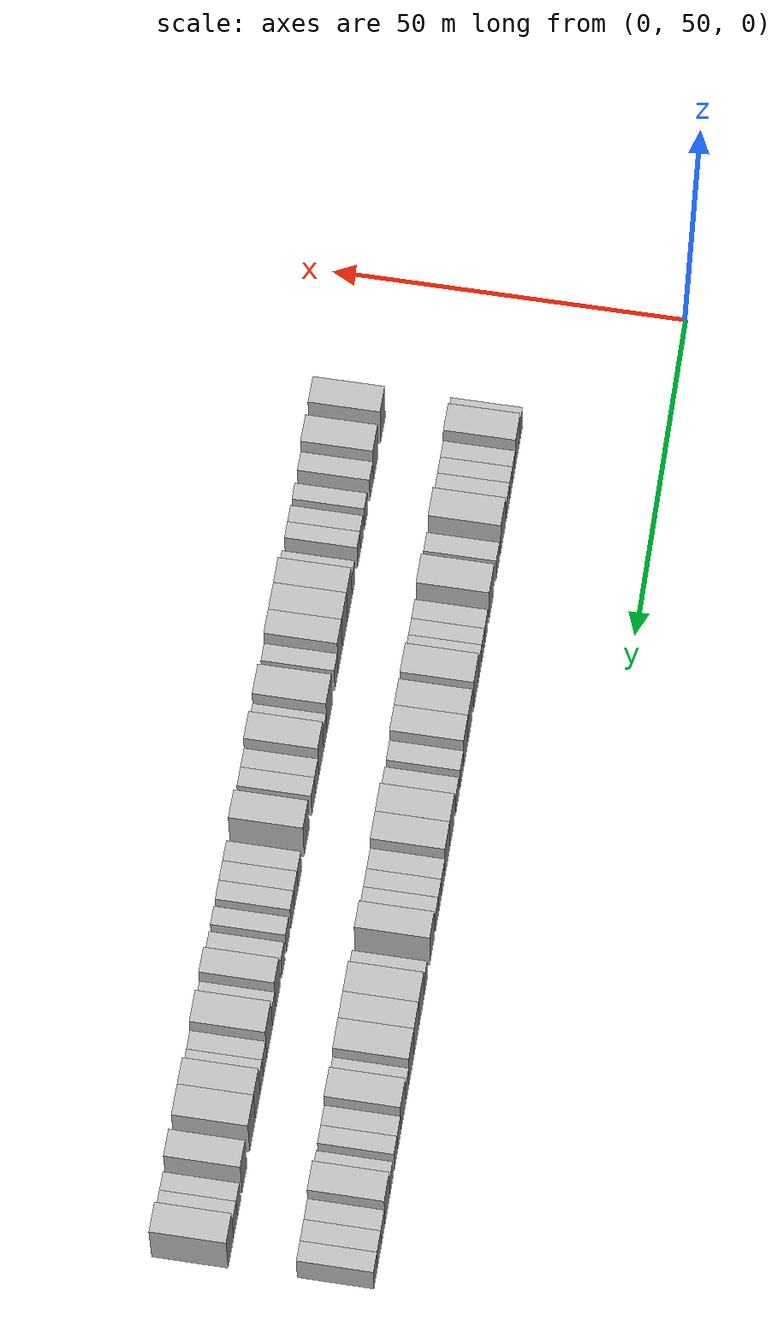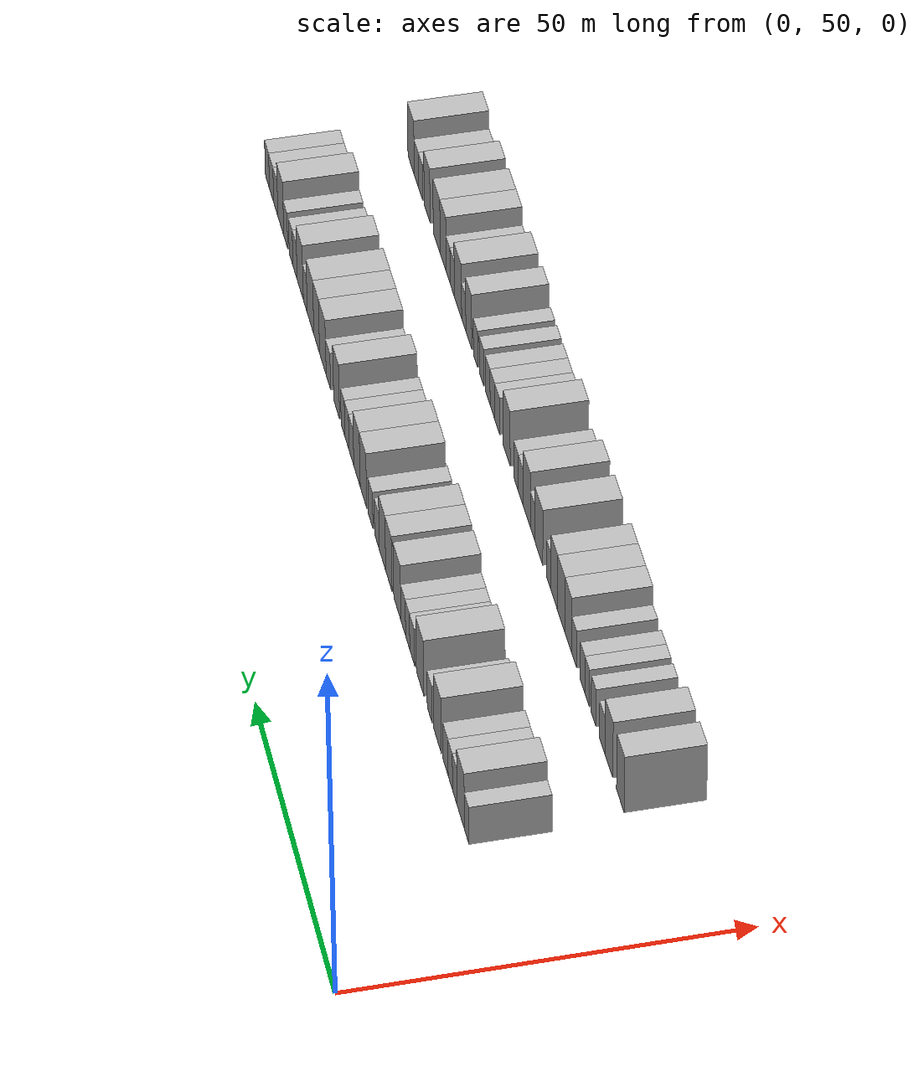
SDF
<sdf version="1.6">
 <world name="default">
  <model name="building_70">
   <static>1</static>
   <pose>25.0000 71.9206 0 0.000000 0.000000 0.000000</pose>
   <link name="link">
    <pose>0 0 3.00 0 0 0</pose>
    <collision name="collision"><geometry><box><size>10.0000 2.6103 6.0000</size></box></geometry></collision>
    <visual name="visual">
     <cast_shadows>0</cast_shadows>
     <geometry><box><size>10.0000 2.6103 6.0000</size></box></geometry>
     <material>
      <script>
       <uri>model://HANNAS_wall/materials/scripts</uri>
       <uri>model://HANNAS_wall/materials/textures</uri>
       <name>vrc/HANNAS_wall</name>
      </script>
     </material>
    </visual>
   </link>
  </model>
  <model name="building_71">
   <static>1</static>
   <pose>25.0000 75.3492 0 0.000000 0.000000 0.000000</pose>
   <link name="link">
    <pose>0 0 4.50 0 0 0</pose>
    <collision name="collision"><geometry><box><size>10.0000 4.2471 9.0000</size></box></geometry></collision>
    <visual name="visual">
     <cast_shadows>0</cast_shadows>
     <geometry><box><size>10.0000 4.2471 9.0000</size></box></geometry>
     <material>
      <script>
       <uri>model://HANNAS_wall/materials/scripts</uri>
       <uri>model://HANNAS_wall/materials/textures</uri>
       <name>vrc/HANNAS_wall</name>
      </script>
     </material>
    </visual>
   </link>
  </model>
  <model name="building_72">
   <static>1</static>
   <pose>25.0000 78.7423 0 0.000000 0.000000 0.000000</pose>
   <link name="link">
    <pose>0 0 3.00 0 0 0</pose>
    <collision name="collision"><geometry><box><size>10.0000 2.5389 6.0000</size></box></geometry></collision>
    <visual name="visual">
     <cast_shadows>0</cast_shadows>
     <geometry><box><size>10.0000 2.5389 6.0000</size></box></geometry>
     <material>
      <script>
       <uri>model://HANNAS_wall/materials/scripts</uri>
       <uri>model://HANNAS_wall/materials/textures</uri>
       <name>vrc/HANNAS_wall</name>
      </script>
     </material>
    </visual>
   </link>
  </model>
  <model name="building_73">
   <static>1</static>
   <pose>25.0000 81.2776 0 0.000000 0.000000 0.000000</pose>
   <link name="link">
    <pose>0 0 3.00 0 0 0</pose>
    <collision name="collision"><geometry><box><size>10.0000 2.5317 6.0000</size></box></geometry></collision>
    <visual name="visual">
     <cast_shadows>0</cast_shadows>
     <geometry><box><size>10.0000 2.5317 6.0000</size></box></geometry>
     <material>
      <script>
       <uri>model://HANNAS_wall/materials/scripts</uri>
       <uri>model://HANNAS_wall/materials/textures</uri>
       <name>vrc/HANNAS_wall</name>
      </script>
     </material>
    </visual>
   </link>
  </model>
  <model name="building_74">
   <static>1</static>
   <pose>25.0000 84.0116 0 0.000000 0.000000 0.000000</pose>
   <link name="link">
    <pose>0 0 3.00 0 0 0</pose>
    <collision name="collision"><geometry><box><size>10.0000 2.9365 6.0000</size></box></geometry></collision>
    <visual name="visual">
     <cast_shadows>0</cast_shadows>
     <geometry><box><size>10.0000 2.9365 6.0000</size></box></geometry>
     <material>
      <script>
       <uri>model://HANNAS_wall/materials/scripts</uri>
       <uri>model://HANNAS_wall/materials/textures</uri>
       <name>vrc/HANNAS_wall</name>
      </script>
     </material>
    </visual>
   </link>
  </model>
  <model name="building_75">
   <static>1</static>
   <pose>25.0000 88.6656 0 0.000000 0.000000 0.000000</pose>
   <link name="link">
    <pose>0 0 4.50 0 0 0</pose>
    <collision name="collision"><geometry><box><size>10.0000 4.3715 9.0000</size></box></geometry></collision>
    <visual name="visual">
     <cast_shadows>0</cast_shadows>
     <geometry><box><size>10.0000 4.3715 9.0000</size></box></geometry>
     <material>
      <script>
       <uri>model://HANNAS_wall/materials/scripts</uri>
       <uri>model://HANNAS_wall/materials/textures</uri>
       <name>vrc/HANNAS_wall</name>
      </script>
     </material>
    </visual>
   </link>
  </model>
  <model name="building_76">
   <static>1</static>
   <pose>25.0000 93.3038 0 0.000000 0.000000 0.000000</pose>
   <link name="link">
    <pose>0 0 3.00 0 0 0</pose>
    <collision name="collision"><geometry><box><size>10.0000 2.9049 6.0000</size></box></geometry></collision>
    <visual name="visual">
     <cast_shadows>0</cast_shadows>
     <geometry><box><size>10.0000 2.9049 6.0000</size></box></geometry>
     <material>
      <script>
       <uri>model://HANNAS_wall/materials/scripts</uri>
       <uri>model://HANNAS_wall/materials/textures</uri>
       <name>vrc/HANNAS_wall</name>
      </script>
     </material>
    </visual>
   </link>
  </model>
  <model name="building_77">
   <static>1</static>
   <pose>25.0000 98.9863 0 0.000000 0.000000 0.000000</pose>
   <link name="link">
    <pose>0 0 4.50 0 0 0</pose>
    <collision name="collision"><geometry><box><size>10.0000 4.4600 9.0000</size></box></geometry></collision>
    <visual name="visual">
     <cast_shadows>0</cast_shadows>
     <geometry><box><size>10.0000 4.4600 9.0000</size></box></geometry>
     <material>
      <script>
       <uri>model://HANNAS_wall/materials/scripts</uri>
       <uri>model://HANNAS_wall/materials/textures</uri>
       <name>vrc/HANNAS_wall</name>
      </script>
     </material>
    </visual>
   </link>
  </model>
  <model name="building_78">
   <static>1</static>
   <pose>25.0000 103.6691 0 0.000000 0.000000 0.000000</pose>
   <link name="link">
    <pose>0 0 3.00 0 0 0</pose>
    <collision name="collision"><geometry><box><size>10.0000 2.9058 6.0000</size></box></geometry></collision>
    <visual name="visual">
     <cast_shadows>0</cast_shadows>
     <geometry><box><size>10.0000 2.9058 6.0000</size></box></geometry>
     <material>
      <script>
       <uri>model://HANNAS_wall/materials/scripts</uri>
       <uri>model://HANNAS_wall/materials/textures</uri>
       <name>vrc/HANNAS_wall</name>
      </script>
     </material>
    </visual>
   </link>
  </model>
  <model name="building_79">
   <static>1</static>
   <pose>25.0000 106.3759 0 0.000000 0.000000 0.000000</pose>
   <link name="link">
    <pose>0 0 3.00 0 0 0</pose>
    <collision name="collision"><geometry><box><size>10.0000 2.5078 6.0000</size></box></geometry></collision>
    <visual name="visual">
     <cast_shadows>0</cast_shadows>
     <geometry><box><size>10.0000 2.5078 6.0000</size></box></geometry>
     <material>
      <script>
       <uri>model://HANNAS_wall/materials/scripts</uri>
       <uri>model://HANNAS_wall/materials/textures</uri>
       <name>vrc/HANNAS_wall</name>
      </script>
     </material>
    </visual>
   </link>
  </model>
  <model name="building_80">
   <static>1</static>
   <pose>25.0000 109.0364 0 0.000000 0.000000 0.000000</pose>
   <link name="link">
    <pose>0 0 3.00 0 0 0</pose>
    <collision name="collision"><geometry><box><size>10.0000 2.8132 6.0000</size></box></geometry></collision>
    <visual name="visual">
     <cast_shadows>0</cast_shadows>
     <geometry><box><size>10.0000 2.8132 6.0000</size></box></geometry>
     <material>
      <script>
       <uri>model://HANNAS_wall/materials/scripts</uri>
       <uri>model://HANNAS_wall/materials/textures</uri>
       <name>vrc/HANNAS_wall</name>
      </script>
     </material>
    </visual>
   </link>
  </model>
  <model name="building_81">
   <static>1</static>
   <pose>25.0000 112.6506 0 0.000000 0.000000 0.000000</pose>
   <link name="link">
    <pose>0 0 4.50 0 0 0</pose>
    <collision name="collision"><geometry><box><size>10.0000 4.4153 9.0000</size></box></geometry></collision>
    <visual name="visual">
     <cast_shadows>0</cast_shadows>
     <geometry><box><size>10.0000 4.4153 9.0000</size></box></geometry>
     <material>
      <script>
       <uri>model://HANNAS_wall/materials/scripts</uri>
       <uri>model://HANNAS_wall/materials/textures</uri>
       <name>vrc/HANNAS_wall</name>
      </script>
     </material>
    </visual>
   </link>
  </model>
  <model name="building_82">
   <static>1</static>
   <pose>25.0000 117.8147 0 0.000000 0.000000 0.000000</pose>
   <link name="link">
    <pose>0 0 4.50 0 0 0</pose>
    <collision name="collision"><geometry><box><size>10.0000 3.9129 9.0000</size></box></geometry></collision>
    <visual name="visual">
     <cast_shadows>0</cast_shadows>
     <geometry><box><size>10.0000 3.9129 9.0000</size></box></geometry>
     <material>
      <script>
       <uri>model://HANNAS_wall/materials/scripts</uri>
       <uri>model://HANNAS_wall/materials/textures</uri>
       <name>vrc/HANNAS_wall</name>
      </script>
     </material>
    </visual>
   </link>
  </model>
  <model name="building_83">
   <static>1</static>
   <pose>25.0000 121.7105 0 0.000000 0.000000 0.000000</pose>
   <link name="link">
    <pose>0 0 4.50 0 0 0</pose>
    <collision name="collision"><geometry><box><size>10.0000 3.8787 9.0000</size></box></geometry></collision>
    <visual name="visual">
     <cast_shadows>0</cast_shadows>
     <geometry><box><size>10.0000 3.8787 9.0000</size></box></geometry>
     <material>
      <script>
       <uri>model://HANNAS_wall/materials/scripts</uri>
       <uri>model://HANNAS_wall/materials/textures</uri>
       <name>vrc/HANNAS_wall</name>
      </script>
     </material>
    </visual>
   </link>
  </model>
  <model name="building_84">
   <static>1</static>
   <pose>25.0000 125.1361 0 0.000000 0.000000 0.000000</pose>
   <link name="link">
    <pose>0 0 3.00 0 0 0</pose>
    <collision name="collision"><geometry><box><size>10.0000 2.9725 6.0000</size></box></geometry></collision>
    <visual name="visual">
     <cast_shadows>0</cast_shadows>
     <geometry><box><size>10.0000 2.9725 6.0000</size></box></geometry>
     <material>
      <script>
       <uri>model://HANNAS_wall/materials/scripts</uri>
       <uri>model://HANNAS_wall/materials/textures</uri>
       <name>vrc/HANNAS_wall</name>
      </script>
     </material>
    </visual>
   </link>
  </model>
  <model name="building_85">
   <static>1</static>
   <pose>25.0000 129.0584 0 0.000000 0.000000 0.000000</pose>
   <link name="link">
    <pose>0 0 3.00 0 0 0</pose>
    <collision name="collision"><geometry><box><size>10.0000 2.8722 6.0000</size></box></geometry></collision>
    <visual name="visual">
     <cast_shadows>0</cast_shadows>
     <geometry><box><size>10.0000 2.8722 6.0000</size></box></geometry>
     <material>
      <script>
       <uri>model://HANNAS_wall/materials/scripts</uri>
       <uri>model://HANNAS_wall/materials/textures</uri>
       <name>vrc/HANNAS_wall</name>
      </script>
     </material>
    </visual>
   </link>
  </model>
  <model name="building_86">
   <static>1</static>
   <pose>25.0000 133.5608 0 0.000000 0.000000 0.000000</pose>
   <link name="link">
    <pose>0 0 4.50 0 0 0</pose>
    <collision name="collision"><geometry><box><size>10.0000 4.1327 9.0000</size></box></geometry></collision>
    <visual name="visual">
     <cast_shadows>0</cast_shadows>
     <geometry><box><size>10.0000 4.1327 9.0000</size></box></geometry>
     <material>
      <script>
       <uri>model://HANNAS_wall/materials/scripts</uri>
       <uri>model://HANNAS_wall/materials/textures</uri>
       <name>vrc/HANNAS_wall</name>
      </script>
     </material>
    </visual>
   </link>
  </model>
  <model name="building_87">
   <static>1</static>
   <pose>25.0000 137.6667 0 0.000000 0.000000 0.000000</pose>
   <link name="link">
    <pose>0 0 4.50 0 0 0</pose>
    <collision name="collision"><geometry><box><size>10.0000 4.0789 9.0000</size></box></geometry></collision>
    <visual name="visual">
     <cast_shadows>0</cast_shadows>
     <geometry><box><size>10.0000 4.0789 9.0000</size></box></geometry>
     <material>
      <script>
       <uri>model://HANNAS_wall/materials/scripts</uri>
       <uri>model://HANNAS_wall/materials/textures</uri>
       <name>vrc/HANNAS_wall</name>
      </script>
     </material>
    </visual>
   </link>
  </model>
  <model name="building_88">
   <static>1</static>
   <pose>25.0000 141.2052 0 0.000000 0.000000 0.000000</pose>
   <link name="link">
    <pose>0 0 3.00 0 0 0</pose>
    <collision name="collision"><geometry><box><size>10.0000 2.9981 6.0000</size></box></geometry></collision>
    <visual name="visual">
     <cast_shadows>0</cast_shadows>
     <geometry><box><size>10.0000 2.9981 6.0000</size></box></geometry>
     <material>
      <script>
       <uri>model://HANNAS_wall/materials/scripts</uri>
       <uri>model://HANNAS_wall/materials/textures</uri>
       <name>vrc/HANNAS_wall</name>
      </script>
     </material>
    </visual>
   </link>
  </model>
  <model name="building_89">
   <static>1</static>
   <pose>25.0000 144.0304 0 0.000000 0.000000 0.000000</pose>
   <link name="link">
    <pose>0 0 3.00 0 0 0</pose>
    <collision name="collision"><geometry><box><size>10.0000 2.6524 6.0000</size></box></geometry></collision>
    <visual name="visual">
     <cast_shadows>0</cast_shadows>
     <geometry><box><size>10.0000 2.6524 6.0000</size></box></geometry>
     <material>
      <script>
       <uri>model://HANNAS_wall/materials/scripts</uri>
       <uri>model://HANNAS_wall/materials/textures</uri>
       <name>vrc/HANNAS_wall</name>
      </script>
     </material>
    </visual>
   </link>
  </model>
  <model name="building_90">
   <static>1</static>
   <pose>25.0000 146.5695 0 0.000000 0.000000 0.000000</pose>
   <link name="link">
    <pose>0 0 3.00 0 0 0</pose>
    <collision name="collision"><geometry><box><size>10.0000 2.4257 6.0000</size></box></geometry></collision>
    <visual name="visual">
     <cast_shadows>0</cast_shadows>
     <geometry><box><size>10.0000 2.4257 6.0000</size></box></geometry>
     <material>
      <script>
       <uri>model://HANNAS_wall/materials/scripts</uri>
       <uri>model://HANNAS_wall/materials/textures</uri>
       <name>vrc/HANNAS_wall</name>
      </script>
     </material>
    </visual>
   </link>
  </model>
  <model name="building_91">
   <static>1</static>
   <pose>25.0000 150.7055 0 0.000000 0.000000 0.000000</pose>
   <link name="link">
    <pose>0 0 4.50 0 0 0</pose>
    <collision name="collision"><geometry><box><size>10.0000 3.8464 9.0000</size></box></geometry></collision>
    <visual name="visual">
     <cast_shadows>0</cast_shadows>
     <geometry><box><size>10.0000 3.8464 9.0000</size></box></geometry>
     <material>
      <script>
       <uri>model://HANNAS_wall/materials/scripts</uri>
       <uri>model://HANNAS_wall/materials/textures</uri>
       <name>vrc/HANNAS_wall</name>
      </script>
     </material>
    </visual>
   </link>
  </model>
  <model name="building_92">
   <static>1</static>
   <pose>25.0000 156.0804 0 0.000000 0.000000 0.000000</pose>
   <link name="link">
    <pose>0 0 3.00 0 0 0</pose>
    <collision name="collision"><geometry><box><size>10.0000 2.9036 6.0000</size></box></geometry></collision>
    <visual name="visual">
     <cast_shadows>0</cast_shadows>
     <geometry><box><size>10.0000 2.9036 6.0000</size></box></geometry>
     <material>
      <script>
       <uri>model://HANNAS_wall/materials/scripts</uri>
       <uri>model://HANNAS_wall/materials/textures</uri>
       <name>vrc/HANNAS_wall</name>
      </script>
     </material>
    </visual>
   </link>
  </model>
  <model name="building_93">
   <static>1</static>
   <pose>25.0000 159.6761 0 0.000000 0.000000 0.000000</pose>
   <link name="link">
    <pose>0 0 4.50 0 0 0</pose>
    <collision name="collision"><geometry><box><size>10.0000 4.2876 9.0000</size></box></geometry></collision>
    <visual name="visual">
     <cast_shadows>0</cast_shadows>
     <geometry><box><size>10.0000 4.2876 9.0000</size></box></geometry>
     <material>
      <script>
       <uri>model://HANNAS_wall/materials/scripts</uri>
       <uri>model://HANNAS_wall/materials/textures</uri>
       <name>vrc/HANNAS_wall</name>
      </script>
     </material>
    </visual>
   </link>
  </model>
  <model name="building_94">
   <static>1</static>
   <pose>25.0000 163.7129 0 0.000000 0.000000 0.000000</pose>
   <link name="link">
    <pose>0 0 4.50 0 0 0</pose>
    <collision name="collision"><geometry><box><size>10.0000 3.7861 9.0000</size></box></geometry></collision>
    <visual name="visual">
     <cast_shadows>0</cast_shadows>
     <geometry><box><size>10.0000 3.7861 9.0000</size></box></geometry>
     <material>
      <script>
       <uri>model://HANNAS_wall/materials/scripts</uri>
       <uri>model://HANNAS_wall/materials/textures</uri>
       <name>vrc/HANNAS_wall</name>
      </script>
     </material>
    </visual>
   </link>
  </model>
  <model name="building_95">
   <static>1</static>
   <pose>25.0000 167.7849 0 0.000000 0.000000 0.000000</pose>
   <link name="link">
    <pose>0 0 4.50 0 0 0</pose>
    <collision name="collision"><geometry><box><size>10.0000 4.3579 9.0000</size></box></geometry></collision>
    <visual name="visual">
     <cast_shadows>0</cast_shadows>
     <geometry><box><size>10.0000 4.3579 9.0000</size></box></geometry>
     <material>
      <script>
       <uri>model://HANNAS_wall/materials/scripts</uri>
       <uri>model://HANNAS_wall/materials/textures</uri>
       <name>vrc/HANNAS_wall</name>
      </script>
     </material>
    </visual>
   </link>
  </model>
  <model name="building_96">
   <static>1</static>
   <pose>25.0000 171.3018 0 0.000000 0.000000 0.000000</pose>
   <link name="link">
    <pose>0 0 3.00 0 0 0</pose>
    <collision name="collision"><geometry><box><size>10.0000 2.6759 6.0000</size></box></geometry></collision>
    <visual name="visual">
     <cast_shadows>0</cast_shadows>
     <geometry><box><size>10.0000 2.6759 6.0000</size></box></geometry>
     <material>
      <script>
       <uri>model://HANNAS_wall/materials/scripts</uri>
       <uri>model://HANNAS_wall/materials/textures</uri>
       <name>vrc/HANNAS_wall</name>
      </script>
     </material>
    </visual>
   </link>
  </model>
  <model name="building_97">
   <static>1</static>
   <pose>25.0000 174.7092 0 0.000000 0.000000 0.000000</pose>
   <link name="link">
    <pose>0 0 4.50 0 0 0</pose>
    <collision name="collision"><geometry><box><size>10.0000 4.1390 9.0000</size></box></geometry></collision>
    <visual name="visual">
     <cast_shadows>0</cast_shadows>
     <geometry><box><size>10.0000 4.1390 9.0000</size></box></geometry>
     <material>
      <script>
       <uri>model://HANNAS_wall/materials/scripts</uri>
       <uri>model://HANNAS_wall/materials/textures</uri>
       <name>vrc/HANNAS_wall</name>
      </script>
     </material>
    </visual>
   </link>
  </model>
  <model name="building_98">
   <static>1</static>
   <pose>25.0000 178.1788 0 0.000000 0.000000 0.000000</pose>
   <link name="link">
    <pose>0 0 3.00 0 0 0</pose>
    <collision name="collision"><geometry><box><size>10.0000 2.8002 6.0000</size></box></geometry></collision>
    <visual name="visual">
     <cast_shadows>0</cast_shadows>
     <geometry><box><size>10.0000 2.8002 6.0000</size></box></geometry>
     <material>
      <script>
       <uri>model://HANNAS_wall/materials/scripts</uri>
       <uri>model://HANNAS_wall/materials/textures</uri>
       <name>vrc/HANNAS_wall</name>
      </script>
     </material>
    </visual>
   </link>
  </model>
  <model name="building_99">
   <static>1</static>
   <pose>25.0000 180.8631 0 0.000000 0.000000 0.000000</pose>
   <link name="link">
    <pose>0 0 3.00 0 0 0</pose>
    <collision name="collision"><geometry><box><size>10.0000 2.5684 6.0000</size></box></geometry></collision>
    <visual name="visual">
     <cast_shadows>0</cast_shadows>
     <geometry><box><size>10.0000 2.5684 6.0000</size></box></geometry>
     <material>
      <script>
       <uri>model://HANNAS_wall/materials/scripts</uri>
       <uri>model://HANNAS_wall/materials/textures</uri>
       <name>vrc/HANNAS_wall</name>
      </script>
     </material>
    </visual>
   </link>
  </model>
  <model name="building_100">
   <static>1</static>
   <pose>25.0000 184.4745 0 0.000000 0.000000 0.000000</pose>
   <link name="link">
    <pose>0 0 3.00 0 0 0</pose>
    <collision name="collision"><geometry><box><size>10.0000 2.6544 6.0000</size></box></geometry></collision>
    <visual name="visual">
     <cast_shadows>0</cast_shadows>
     <geometry><box><size>10.0000 2.6544 6.0000</size></box></geometry>
     <material>
      <script>
       <uri>model://HANNAS_wall/materials/scripts</uri>
       <uri>model://HANNAS_wall/materials/textures</uri>
       <name>vrc/HANNAS_wall</name>
      </script>
     </material>
    </visual>
   </link>
  </model>
  <model name="building_101">
   <static>1</static>
   <pose>25.0000 187.8325 0 0.000000 0.000000 0.000000</pose>
   <link name="link">
    <pose>0 0 4.50 0 0 0</pose>
    <collision name="collision"><geometry><box><size>10.0000 4.0618 9.0000</size></box></geometry></collision>
    <visual name="visual">
     <cast_shadows>0</cast_shadows>
     <geometry><box><size>10.0000 4.0618 9.0000</size></box></geometry>
     <material>
      <script>
       <uri>model://HANNAS_wall/materials/scripts</uri>
       <uri>model://HANNAS_wall/materials/textures</uri>
       <name>vrc/HANNAS_wall</name>
      </script>
     </material>
    </visual>
   </link>
  </model>
  <model name="building_102">
   <static>1</static>
   <pose>25.0000 191.3025 0 0.000000 0.000000 0.000000</pose>
   <link name="link">
    <pose>0 0 3.00 0 0 0</pose>
    <collision name="collision"><geometry><box><size>10.0000 2.8781 6.0000</size></box></geometry></collision>
    <visual name="visual">
     <cast_shadows>0</cast_shadows>
     <geometry><box><size>10.0000 2.8781 6.0000</size></box></geometry>
     <material>
      <script>
       <uri>model://HANNAS_wall/materials/scripts</uri>
       <uri>model://HANNAS_wall/materials/textures</uri>
       <name>vrc/HANNAS_wall</name>
      </script>
     </material>
    </visual>
   </link>
  </model>
  <model name="building_103">
   <static>1</static>
   <pose>25.0000 194.2213 0 0.000000 0.000000 0.000000</pose>
   <link name="link">
    <pose>0 0 3.00 0 0 0</pose>
    <collision name="collision"><geometry><box><size>10.0000 2.9597 6.0000</size></box></geometry></collision>
    <visual name="visual">
     <cast_shadows>0</cast_shadows>
     <geometry><box><size>10.0000 2.9597 6.0000</size></box></geometry>
     <material>
      <script>
       <uri>model://HANNAS_wall/materials/scripts</uri>
       <uri>model://HANNAS_wall/materials/textures</uri>
       <name>vrc/HANNAS_wall</name>
      </script>
     </material>
    </visual>
   </link>
  </model>
  <model name="building_104">
   <static>1</static>
   <pose>25.0000 197.1024 0 0.000000 0.000000 0.000000</pose>
   <link name="link">
    <pose>0 0 3.00 0 0 0</pose>
    <collision name="collision"><geometry><box><size>10.0000 2.8024 6.0000</size></box></geometry></collision>
    <visual name="visual">
     <cast_shadows>0</cast_shadows>
     <geometry><box><size>10.0000 2.8024 6.0000</size></box></geometry>
     <material>
      <script>
       <uri>model://HANNAS_wall/materials/scripts</uri>
       <uri>model://HANNAS_wall/materials/textures</uri>
       <name>vrc/HANNAS_wall</name>
      </script>
     </material>
    </visual>
   </link>
  </model>
  <model name="building_171">
   <static>1</static>
   <pose>44.0000 73.9835 0 0.000000 0.000000 0.000000</pose>
   <link name="link">
    <pose>0 0 4.50 0 0 0</pose>
    <collision name="collision"><geometry><box><size>10.0000 4.0714 9.0000</size></box></geometry></collision>
    <visual name="visual">
     <cast_shadows>0</cast_shadows>
     <geometry><box><size>10.0000 4.0714 9.0000</size></box></geometry>
     <material>
      <script>
       <uri>model://HANNAS_wall/materials/scripts</uri>
       <uri>model://HANNAS_wall/materials/textures</uri>
       <name>vrc/HANNAS_wall</name>
      </script>
     </material>
    </visual>
   </link>
  </model>
  <model name="building_172">
   <static>1</static>
   <pose>44.0000 80.1145 0 0.000000 0.000000 0.000000</pose>
   <link name="link">
    <pose>0 0 4.50 0 0 0</pose>
    <collision name="collision"><geometry><box><size>10.0000 4.1907 9.0000</size></box></geometry></collision>
    <visual name="visual">
     <cast_shadows>0</cast_shadows>
     <geometry><box><size>10.0000 4.1907 9.0000</size></box></geometry>
     <material>
      <script>
       <uri>model://HANNAS_wall/materials/scripts</uri>
       <uri>model://HANNAS_wall/materials/textures</uri>
       <name>vrc/HANNAS_wall</name>
      </script>
     </material>
    </visual>
   </link>
  </model>
  <model name="building_173">
   <static>1</static>
   <pose>44.0000 83.6709 0 0.000000 0.000000 0.000000</pose>
   <link name="link">
    <pose>0 0 3.00 0 0 0</pose>
    <collision name="collision"><geometry><box><size>10.0000 2.9221 6.0000</size></box></geometry></collision>
    <visual name="visual">
     <cast_shadows>0</cast_shadows>
     <geometry><box><size>10.0000 2.9221 6.0000</size></box></geometry>
     <material>
      <script>
       <uri>model://HANNAS_wall/materials/scripts</uri>
       <uri>model://HANNAS_wall/materials/textures</uri>
       <name>vrc/HANNAS_wall</name>
      </script>
     </material>
    </visual>
   </link>
  </model>
  <model name="building_174">
   <static>1</static>
   <pose>44.0000 88.3877 0 0.000000 0.000000 0.000000</pose>
   <link name="link">
    <pose>0 0 3.00 0 0 0</pose>
    <collision name="collision"><geometry><box><size>10.0000 2.5116 6.0000</size></box></geometry></collision>
    <visual name="visual">
     <cast_shadows>0</cast_shadows>
     <geometry><box><size>10.0000 2.5116 6.0000</size></box></geometry>
     <material>
      <script>
       <uri>model://HANNAS_wall/materials/scripts</uri>
       <uri>model://HANNAS_wall/materials/textures</uri>
       <name>vrc/HANNAS_wall</name>
      </script>
     </material>
    </visual>
   </link>
  </model>
  <model name="building_175">
   <static>1</static>
   <pose>44.0000 91.9021 0 0.000000 0.000000 0.000000</pose>
   <link name="link">
    <pose>0 0 3.00 0 0 0</pose>
    <collision name="collision"><geometry><box><size>10.0000 2.5170 6.0000</size></box></geometry></collision>
    <visual name="visual">
     <cast_shadows>0</cast_shadows>
     <geometry><box><size>10.0000 2.5170 6.0000</size></box></geometry>
     <material>
      <script>
       <uri>model://HANNAS_wall/materials/scripts</uri>
       <uri>model://HANNAS_wall/materials/textures</uri>
       <name>vrc/HANNAS_wall</name>
      </script>
     </material>
    </visual>
   </link>
  </model>
  <model name="building_176">
   <static>1</static>
   <pose>44.0000 94.4269 0 0.000000 0.000000 0.000000</pose>
   <link name="link">
    <pose>0 0 3.00 0 0 0</pose>
    <collision name="collision"><geometry><box><size>10.0000 2.5325 6.0000</size></box></geometry></collision>
    <visual name="visual">
     <cast_shadows>0</cast_shadows>
     <geometry><box><size>10.0000 2.5325 6.0000</size></box></geometry>
     <material>
      <script>
       <uri>model://HANNAS_wall/materials/scripts</uri>
       <uri>model://HANNAS_wall/materials/textures</uri>
       <name>vrc/HANNAS_wall</name>
      </script>
     </material>
    </visual>
   </link>
  </model>
  <model name="building_177">
   <static>1</static>
   <pose>44.0000 99.0194 0 0.000000 0.000000 0.000000</pose>
   <link name="link">
    <pose>0 0 3.00 0 0 0</pose>
    <collision name="collision"><geometry><box><size>10.0000 2.6525 6.0000</size></box></geometry></collision>
    <visual name="visual">
     <cast_shadows>0</cast_shadows>
     <geometry><box><size>10.0000 2.6525 6.0000</size></box></geometry>
     <material>
      <script>
       <uri>model://HANNAS_wall/materials/scripts</uri>
       <uri>model://HANNAS_wall/materials/textures</uri>
       <name>vrc/HANNAS_wall</name>
      </script>
     </material>
    </visual>
   </link>
  </model>
  <model name="building_178">
   <static>1</static>
   <pose>44.0000 102.2600 0 0.000000 0.000000 0.000000</pose>
   <link name="link">
    <pose>0 0 4.50 0 0 0</pose>
    <collision name="collision"><geometry><box><size>10.0000 3.8287 9.0000</size></box></geometry></collision>
    <visual name="visual">
     <cast_shadows>0</cast_shadows>
     <geometry><box><size>10.0000 3.8287 9.0000</size></box></geometry>
     <material>
      <script>
       <uri>model://HANNAS_wall/materials/scripts</uri>
       <uri>model://HANNAS_wall/materials/textures</uri>
       <name>vrc/HANNAS_wall</name>
      </script>
     </material>
    </visual>
   </link>
  </model>
  <model name="building_179">
   <static>1</static>
   <pose>44.0000 106.2275 0 0.000000 0.000000 0.000000</pose>
   <link name="link">
    <pose>0 0 4.50 0 0 0</pose>
    <collision name="collision"><geometry><box><size>10.0000 4.1065 9.0000</size></box></geometry></collision>
    <visual name="visual">
     <cast_shadows>0</cast_shadows>
     <geometry><box><size>10.0000 4.1065 9.0000</size></box></geometry>
     <material>
      <script>
       <uri>model://HANNAS_wall/materials/scripts</uri>
       <uri>model://HANNAS_wall/materials/textures</uri>
       <name>vrc/HANNAS_wall</name>
      </script>
     </material>
    </visual>
   </link>
  </model>
  <model name="building_180">
   <static>1</static>
   <pose>44.0000 110.1261 0 0.000000 0.000000 0.000000</pose>
   <link name="link">
    <pose>0 0 4.50 0 0 0</pose>
    <collision name="collision"><geometry><box><size>10.0000 3.6906 9.0000</size></box></geometry></collision>
    <visual name="visual">
     <cast_shadows>0</cast_shadows>
     <geometry><box><size>10.0000 3.6906 9.0000</size></box></geometry>
     <material>
      <script>
       <uri>model://HANNAS_wall/materials/scripts</uri>
       <uri>model://HANNAS_wall/materials/textures</uri>
       <name>vrc/HANNAS_wall</name>
      </script>
     </material>
    </visual>
   </link>
  </model>
  <model name="building_181">
   <static>1</static>
   <pose>44.0000 113.2884 0 0.000000 0.000000 0.000000</pose>
   <link name="link">
    <pose>0 0 3.00 0 0 0</pose>
    <collision name="collision"><geometry><box><size>10.0000 2.6340 6.0000</size></box></geometry></collision>
    <visual name="visual">
     <cast_shadows>0</cast_shadows>
     <geometry><box><size>10.0000 2.6340 6.0000</size></box></geometry>
     <material>
      <script>
       <uri>model://HANNAS_wall/materials/scripts</uri>
       <uri>model://HANNAS_wall/materials/textures</uri>
       <name>vrc/HANNAS_wall</name>
      </script>
     </material>
    </visual>
   </link>
  </model>
  <model name="building_182">
   <static>1</static>
   <pose>44.0000 118.8533 0 0.000000 0.000000 0.000000</pose>
   <link name="link">
    <pose>0 0 4.50 0 0 0</pose>
    <collision name="collision"><geometry><box><size>10.0000 4.4958 9.0000</size></box></geometry></collision>
    <visual name="visual">
     <cast_shadows>0</cast_shadows>
     <geometry><box><size>10.0000 4.4958 9.0000</size></box></geometry>
     <material>
      <script>
       <uri>model://HANNAS_wall/materials/scripts</uri>
       <uri>model://HANNAS_wall/materials/textures</uri>
       <name>vrc/HANNAS_wall</name>
      </script>
     </material>
    </visual>
   </link>
  </model>
  <model name="building_183">
   <static>1</static>
   <pose>44.0000 122.4400 0 0.000000 0.000000 0.000000</pose>
   <link name="link">
    <pose>0 0 3.00 0 0 0</pose>
    <collision name="collision"><geometry><box><size>10.0000 2.6776 6.0000</size></box></geometry></collision>
    <visual name="visual">
     <cast_shadows>0</cast_shadows>
     <geometry><box><size>10.0000 2.6776 6.0000</size></box></geometry>
     <material>
      <script>
       <uri>model://HANNAS_wall/materials/scripts</uri>
       <uri>model://HANNAS_wall/materials/textures</uri>
       <name>vrc/HANNAS_wall</name>
      </script>
     </material>
    </visual>
   </link>
  </model>
  <model name="building_184">
   <static>1</static>
   <pose>44.0000 125.8126 0 0.000000 0.000000 0.000000</pose>
   <link name="link">
    <pose>0 0 4.50 0 0 0</pose>
    <collision name="collision"><geometry><box><size>10.0000 4.0676 9.0000</size></box></geometry></collision>
    <visual name="visual">
     <cast_shadows>0</cast_shadows>
     <geometry><box><size>10.0000 4.0676 9.0000</size></box></geometry>
     <material>
      <script>
       <uri>model://HANNAS_wall/materials/scripts</uri>
       <uri>model://HANNAS_wall/materials/textures</uri>
       <name>vrc/HANNAS_wall</name>
      </script>
     </material>
    </visual>
   </link>
  </model>
  <model name="building_185">
   <static>1</static>
   <pose>44.0000 129.2490 0 0.000000 0.000000 0.000000</pose>
   <link name="link">
    <pose>0 0 3.00 0 0 0</pose>
    <collision name="collision"><geometry><box><size>10.0000 2.8053 6.0000</size></box></geometry></collision>
    <visual name="visual">
     <cast_shadows>0</cast_shadows>
     <geometry><box><size>10.0000 2.8053 6.0000</size></box></geometry>
     <material>
      <script>
       <uri>model://HANNAS_wall/materials/scripts</uri>
       <uri>model://HANNAS_wall/materials/textures</uri>
       <name>vrc/HANNAS_wall</name>
      </script>
     </material>
    </visual>
   </link>
  </model>
  <model name="building_186">
   <static>1</static>
   <pose>44.0000 132.0639 0 0.000000 0.000000 0.000000</pose>
   <link name="link">
    <pose>0 0 3.00 0 0 0</pose>
    <collision name="collision"><geometry><box><size>10.0000 2.8245 6.0000</size></box></geometry></collision>
    <visual name="visual">
     <cast_shadows>0</cast_shadows>
     <geometry><box><size>10.0000 2.8245 6.0000</size></box></geometry>
     <material>
      <script>
       <uri>model://HANNAS_wall/materials/scripts</uri>
       <uri>model://HANNAS_wall/materials/textures</uri>
       <name>vrc/HANNAS_wall</name>
      </script>
     </material>
    </visual>
   </link>
  </model>
  <model name="building_187">
   <static>1</static>
   <pose>44.0000 137.5429 0 0.000000 0.000000 0.000000</pose>
   <link name="link">
    <pose>0 0 4.50 0 0 0</pose>
    <collision name="collision"><geometry><box><size>10.0000 4.1336 9.0000</size></box></geometry></collision>
    <visual name="visual">
     <cast_shadows>0</cast_shadows>
     <geometry><box><size>10.0000 4.1336 9.0000</size></box></geometry>
     <material>
      <script>
       <uri>model://HANNAS_wall/materials/scripts</uri>
       <uri>model://HANNAS_wall/materials/textures</uri>
       <name>vrc/HANNAS_wall</name>
      </script>
     </material>
    </visual>
   </link>
  </model>
  <model name="building_188">
   <static>1</static>
   <pose>44.0000 143.0673 0 0.000000 0.000000 0.000000</pose>
   <link name="link">
    <pose>0 0 3.00 0 0 0</pose>
    <collision name="collision"><geometry><box><size>10.0000 2.9151 6.0000</size></box></geometry></collision>
    <visual name="visual">
     <cast_shadows>0</cast_shadows>
     <geometry><box><size>10.0000 2.9151 6.0000</size></box></geometry>
     <material>
      <script>
       <uri>model://HANNAS_wall/materials/scripts</uri>
       <uri>model://HANNAS_wall/materials/textures</uri>
       <name>vrc/HANNAS_wall</name>
      </script>
     </material>
    </visual>
   </link>
  </model>
  <model name="building_189">
   <static>1</static>
   <pose>44.0000 145.9606 0 0.000000 0.000000 0.000000</pose>
   <link name="link">
    <pose>0 0 3.00 0 0 0</pose>
    <collision name="collision"><geometry><box><size>10.0000 2.8715 6.0000</size></box></geometry></collision>
    <visual name="visual">
     <cast_shadows>0</cast_shadows>
     <geometry><box><size>10.0000 2.8715 6.0000</size></box></geometry>
     <material>
      <script>
       <uri>model://HANNAS_wall/materials/scripts</uri>
       <uri>model://HANNAS_wall/materials/textures</uri>
       <name>vrc/HANNAS_wall</name>
      </script>
     </material>
    </visual>
   </link>
  </model>
  <model name="building_190">
   <static>1</static>
   <pose>44.0000 148.8010 0 0.000000 0.000000 0.000000</pose>
   <link name="link">
    <pose>0 0 3.00 0 0 0</pose>
    <collision name="collision"><geometry><box><size>10.0000 2.8093 6.0000</size></box></geometry></collision>
    <visual name="visual">
     <cast_shadows>0</cast_shadows>
     <geometry><box><size>10.0000 2.8093 6.0000</size></box></geometry>
     <material>
      <script>
       <uri>model://HANNAS_wall/materials/scripts</uri>
       <uri>model://HANNAS_wall/materials/textures</uri>
       <name>vrc/HANNAS_wall</name>
      </script>
     </material>
    </visual>
   </link>
  </model>
  <model name="building_191">
   <static>1</static>
   <pose>44.0000 152.5418 0 0.000000 0.000000 0.000000</pose>
   <link name="link">
    <pose>0 0 3.00 0 0 0</pose>
    <collision name="collision"><geometry><box><size>10.0000 2.6724 6.0000</size></box></geometry></collision>
    <visual name="visual">
     <cast_shadows>0</cast_shadows>
     <geometry><box><size>10.0000 2.6724 6.0000</size></box></geometry>
     <material>
      <script>
       <uri>model://HANNAS_wall/materials/scripts</uri>
       <uri>model://HANNAS_wall/materials/textures</uri>
       <name>vrc/HANNAS_wall</name>
      </script>
     </material>
    </visual>
   </link>
  </model>
  <model name="building_192">
   <static>1</static>
   <pose>44.0000 156.1852 0 0.000000 0.000000 0.000000</pose>
   <link name="link">
    <pose>0 0 3.00 0 0 0</pose>
    <collision name="collision"><geometry><box><size>10.0000 2.6142 6.0000</size></box></geometry></collision>
    <visual name="visual">
     <cast_shadows>0</cast_shadows>
     <geometry><box><size>10.0000 2.6142 6.0000</size></box></geometry>
     <material>
      <script>
       <uri>model://HANNAS_wall/materials/scripts</uri>
       <uri>model://HANNAS_wall/materials/textures</uri>
       <name>vrc/HANNAS_wall</name>
      </script>
     </material>
    </visual>
   </link>
  </model>
  <model name="building_193">
   <static>1</static>
   <pose>44.0000 160.2935 0 0.000000 0.000000 0.000000</pose>
   <link name="link">
    <pose>0 0 4.50 0 0 0</pose>
    <collision name="collision"><geometry><box><size>10.0000 3.6025 9.0000</size></box></geometry></collision>
    <visual name="visual">
     <cast_shadows>0</cast_shadows>
     <geometry><box><size>10.0000 3.6025 9.0000</size></box></geometry>
     <material>
      <script>
       <uri>model://HANNAS_wall/materials/scripts</uri>
       <uri>model://HANNAS_wall/materials/textures</uri>
       <name>vrc/HANNAS_wall</name>
      </script>
     </material>
    </visual>
   </link>
  </model>
  <model name="building_194">
   <static>1</static>
   <pose>44.0000 163.3955 0 0.000000 0.000000 0.000000</pose>
   <link name="link">
    <pose>0 0 3.00 0 0 0</pose>
    <collision name="collision"><geometry><box><size>10.0000 2.6013 6.0000</size></box></geometry></collision>
    <visual name="visual">
     <cast_shadows>0</cast_shadows>
     <geometry><box><size>10.0000 2.6013 6.0000</size></box></geometry>
     <material>
      <script>
       <uri>model://HANNAS_wall/materials/scripts</uri>
       <uri>model://HANNAS_wall/materials/textures</uri>
       <name>vrc/HANNAS_wall</name>
      </script>
     </material>
    </visual>
   </link>
  </model>
  <model name="building_195">
   <static>1</static>
   <pose>44.0000 166.9324 0 0.000000 0.000000 0.000000</pose>
   <link name="link">
    <pose>0 0 4.50 0 0 0</pose>
    <collision name="collision"><geometry><box><size>10.0000 4.4726 9.0000</size></box></geometry></collision>
    <visual name="visual">
     <cast_shadows>0</cast_shadows>
     <geometry><box><size>10.0000 4.4726 9.0000</size></box></geometry>
     <material>
      <script>
       <uri>model://HANNAS_wall/materials/scripts</uri>
       <uri>model://HANNAS_wall/materials/textures</uri>
       <name>vrc/HANNAS_wall</name>
      </script>
     </material>
    </visual>
   </link>
  </model>
  <model name="building_196">
   <static>1</static>
   <pose>44.0000 170.4941 0 0.000000 0.000000 0.000000</pose>
   <link name="link">
    <pose>0 0 3.00 0 0 0</pose>
    <collision name="collision"><geometry><box><size>10.0000 2.6508 6.0000</size></box></geometry></collision>
    <visual name="visual">
     <cast_shadows>0</cast_shadows>
     <geometry><box><size>10.0000 2.6508 6.0000</size></box></geometry>
     <material>
      <script>
       <uri>model://HANNAS_wall/materials/scripts</uri>
       <uri>model://HANNAS_wall/materials/textures</uri>
       <name>vrc/HANNAS_wall</name>
      </script>
     </material>
    </visual>
   </link>
  </model>
  <model name="building_197">
   <static>1</static>
   <pose>44.0000 173.0570 0 0.000000 0.000000 0.000000</pose>
   <link name="link">
    <pose>0 0 3.00 0 0 0</pose>
    <collision name="collision"><geometry><box><size>10.0000 2.4749 6.0000</size></box></geometry></collision>
    <visual name="visual">
     <cast_shadows>0</cast_shadows>
     <geometry><box><size>10.0000 2.4749 6.0000</size></box></geometry>
     <material>
      <script>
       <uri>model://HANNAS_wall/materials/scripts</uri>
       <uri>model://HANNAS_wall/materials/textures</uri>
       <name>vrc/HANNAS_wall</name>
      </script>
     </material>
    </visual>
   </link>
  </model>
  <model name="building_198">
   <static>1</static>
   <pose>44.0000 176.1536 0 0.000000 0.000000 0.000000</pose>
   <link name="link">
    <pose>0 0 4.50 0 0 0</pose>
    <collision name="collision"><geometry><box><size>10.0000 3.7184 9.0000</size></box></geometry></collision>
    <visual name="visual">
     <cast_shadows>0</cast_shadows>
     <geometry><box><size>10.0000 3.7184 9.0000</size></box></geometry>
     <material>
      <script>
       <uri>model://HANNAS_wall/materials/scripts</uri>
       <uri>model://HANNAS_wall/materials/textures</uri>
       <name>vrc/HANNAS_wall</name>
      </script>
     </material>
    </visual>
   </link>
  </model>
  <model name="building_199">
   <static>1</static>
   <pose>44.0000 180.1910 0 0.000000 0.000000 0.000000</pose>
   <link name="link">
    <pose>0 0 4.50 0 0 0</pose>
    <collision name="collision"><geometry><box><size>10.0000 4.3564 9.0000</size></box></geometry></collision>
    <visual name="visual">
     <cast_shadows>0</cast_shadows>
     <geometry><box><size>10.0000 4.3564 9.0000</size></box></geometry>
     <material>
      <script>
       <uri>model://HANNAS_wall/materials/scripts</uri>
       <uri>model://HANNAS_wall/materials/textures</uri>
       <name>vrc/HANNAS_wall</name>
      </script>
     </material>
    </visual>
   </link>
  </model>
  <model name="building_200">
   <static>1</static>
   <pose>44.0000 186.2522 0 0.000000 0.000000 0.000000</pose>
   <link name="link">
    <pose>0 0 4.50 0 0 0</pose>
    <collision name="collision"><geometry><box><size>10.0000 3.7659 9.0000</size></box></geometry></collision>
    <visual name="visual">
     <cast_shadows>0</cast_shadows>
     <geometry><box><size>10.0000 3.7659 9.0000</size></box></geometry>
     <material>
      <script>
       <uri>model://HANNAS_wall/materials/scripts</uri>
       <uri>model://HANNAS_wall/materials/textures</uri>
       <name>vrc/HANNAS_wall</name>
      </script>
     </material>
    </visual>
   </link>
  </model>
  <model name="building_201">
   <static>1</static>
   <pose>44.0000 190.4093 0 0.000000 0.000000 0.000000</pose>
   <link name="link">
    <pose>0 0 3.00 0 0 0</pose>
    <collision name="collision"><geometry><box><size>10.0000 2.5484 6.0000</size></box></geometry></collision>
    <visual name="visual">
     <cast_shadows>0</cast_shadows>
     <geometry><box><size>10.0000 2.5484 6.0000</size></box></geometry>
     <material>
      <script>
       <uri>model://HANNAS_wall/materials/scripts</uri>
       <uri>model://HANNAS_wall/materials/textures</uri>
       <name>vrc/HANNAS_wall</name>
      </script>
     </material>
    </visual>
   </link>
  </model>
  <model name="building_202">
   <static>1</static>
   <pose>44.0000 193.1043 0 0.000000 0.000000 0.000000</pose>
   <link name="link">
    <pose>0 0 3.00 0 0 0</pose>
    <collision name="collision"><geometry><box><size>10.0000 2.8417 6.0000</size></box></geometry></collision>
    <visual name="visual">
     <cast_shadows>0</cast_shadows>
     <geometry><box><size>10.0000 2.8417 6.0000</size></box></geometry>
     <material>
      <script>
       <uri>model://HANNAS_wall/materials/scripts</uri>
       <uri>model://HANNAS_wall/materials/textures</uri>
       <name>vrc/HANNAS_wall</name>
      </script>
     </material>
    </visual>
   </link>
  </model>
  <model name="building_203">
   <static>1</static>
   <pose>44.0000 196.5828 0 0.000000 0.000000 0.000000</pose>
   <link name="link">
    <pose>0 0 4.50 0 0 0</pose>
    <collision name="collision"><geometry><box><size>10.0000 4.1154 9.0000</size></box></geometry></collision>
    <visual name="visual">
     <cast_shadows>0</cast_shadows>
     <geometry><box><size>10.0000 4.1154 9.0000</size></box></geometry>
     <material>
      <script>
       <uri>model://HANNAS_wall/materials/scripts</uri>
       <uri>model://HANNAS_wall/materials/textures</uri>
       <name>vrc/HANNAS_wall</name>
      </script>
     </material>
    </visual>
   </link>
  </model>
 </world>
</sdf>
